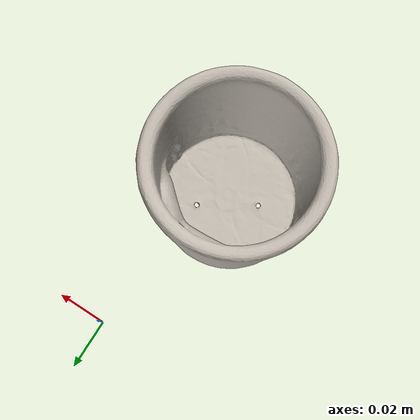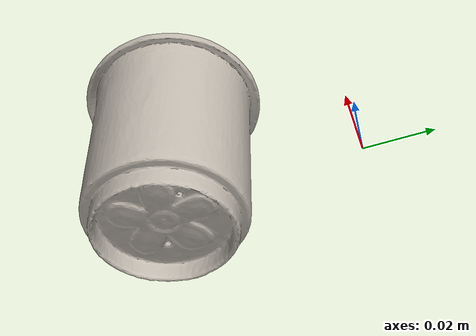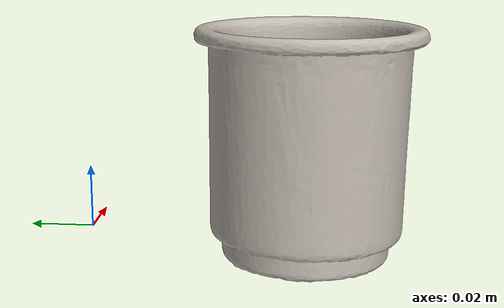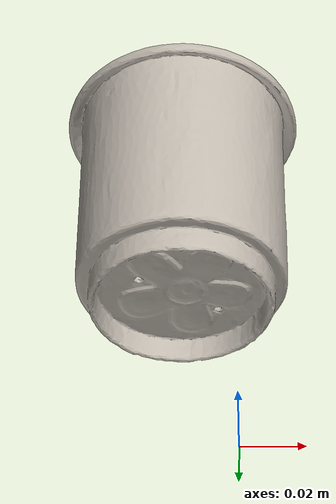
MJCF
<mujoco model="cups_c">
  <compiler angle="radian" meshdir="assets" texturedir="assets"/>
    <default>
        <default class="ycb_col">
            <geom contype="1" class="ycb_col" conaffinity="1" group="3" rgba=".4 .5 .6 1"/>
        </default>
        <default class="ycb_viz">
            <geom contype="0" class="ycb_col" conaffinity="0" type="mesh" mass="0"/>
        </default>
    </default>
  <asset>
    <texture type="2d" name="c_cups_tex" file="texture_map.png"/>
    <material name="c_cups_mat" texture="c_cups_tex" specular="0.5" shininess="0.5"/>
    <mesh file="textured.obj" name="c_cups"/>
    <mesh file="textured_collision_0.obj" name="c_cups_collision_0"/>
    <mesh file="textured_collision_1.obj" name="c_cups_collision_1"/>
    <mesh file="textured_collision_2.obj" name="c_cups_collision_2"/>
    <mesh file="textured_collision_3.obj" name="c_cups_collision_3"/>
    <mesh file="textured_collision_4.obj" name="c_cups_collision_4"/>
    <mesh file="textured_collision_5.obj" name="c_cups_collision_5"/>
    <mesh file="textured_collision_6.obj" name="c_cups_collision_6"/>
    <mesh file="textured_collision_7.obj" name="c_cups_collision_7"/>
    <mesh file="textured_collision_8.obj" name="c_cups_collision_8"/>
    <mesh file="textured_collision_9.obj" name="c_cups_collision_9"/>
    <mesh file="textured_collision_10.obj" name="c_cups_collision_10"/>
    <mesh file="textured_collision_11.obj" name="c_cups_collision_11"/>
    <mesh file="textured_collision_12.obj" name="c_cups_collision_12"/>
    <mesh file="textured_collision_13.obj" name="c_cups_collision_13"/>
    <mesh file="textured_collision_14.obj" name="c_cups_collision_14"/>
    <mesh file="textured_collision_15.obj" name="c_cups_collision_15"/>
    <mesh file="textured_collision_16.obj" name="c_cups_collision_16"/>
    <mesh file="textured_collision_17.obj" name="c_cups_collision_17"/>
    <mesh file="textured_collision_18.obj" name="c_cups_collision_18"/>
    <mesh file="textured_collision_19.obj" name="c_cups_collision_19"/>
    <mesh file="textured_collision_20.obj" name="c_cups_collision_20"/>
    <mesh file="textured_collision_21.obj" name="c_cups_collision_21"/>
    <mesh file="textured_collision_22.obj" name="c_cups_collision_22"/>
    <mesh file="textured_collision_23.obj" name="c_cups_collision_23"/>
    <mesh file="textured_collision_24.obj" name="c_cups_collision_24"/>
    <mesh file="textured_collision_25.obj" name="c_cups_collision_25"/>
    <mesh file="textured_collision_26.obj" name="c_cups_collision_26"/>
    <mesh file="textured_collision_27.obj" name="c_cups_collision_27"/>
    <mesh file="textured_collision_28.obj" name="c_cups_collision_28"/>
    <mesh file="textured_collision_29.obj" name="c_cups_collision_29"/>
    <mesh file="textured_collision_30.obj" name="c_cups_collision_30"/>
    <mesh file="textured_collision_31.obj" name="c_cups_collision_31"/>
    <mesh file="textured_collision_32.obj" name="c_cups_collision_32"/>
    <mesh file="textured_collision_33.obj" name="c_cups_collision_33"/>
    <mesh file="textured_collision_34.obj" name="c_cups_collision_34"/>
    <mesh file="textured_collision_35.obj" name="c_cups_collision_35"/>
    <mesh file="textured_collision_36.obj" name="c_cups_collision_36"/>
    <mesh file="textured_collision_37.obj" name="c_cups_collision_37"/>
    <mesh file="textured_collision_38.obj" name="c_cups_collision_38"/>
    <mesh file="textured_collision_39.obj" name="c_cups_collision_39"/>
    <mesh file="textured_collision_40.obj" name="c_cups_collision_40"/>
    <mesh file="textured_collision_41.obj" name="c_cups_collision_41"/>
    <mesh file="textured_collision_42.obj" name="c_cups_collision_42"/>
    <mesh file="textured_collision_43.obj" name="c_cups_collision_43"/>
    <mesh file="textured_collision_44.obj" name="c_cups_collision_44"/>
    <mesh file="textured_collision_45.obj" name="c_cups_collision_45"/>
    <mesh file="textured_collision_46.obj" name="c_cups_collision_46"/>
    <mesh file="textured_collision_47.obj" name="c_cups_collision_47"/>
    <mesh file="textured_collision_48.obj" name="c_cups_collision_48"/>
    <mesh file="textured_collision_49.obj" name="c_cups_collision_49"/>
  </asset>
  <worldbody>
      <geom material="c_cups_mat" mesh="c_cups" class="ycb_viz"/>
      <geom mesh="c_cups_collision_0" class="ycb_col" conaffinity="1" condim="4" friction="0.1 0.1 0.1" mass="0.0001260469307996628" rgba="1 1 1 1" solimp="0.99 0.99 0.01" solref=".001 0.1" type="mesh" group="3"/>
      <geom mesh="c_cups_collision_1" class="ycb_col" conaffinity="1" condim="4" friction="0.1 0.1 0.1" mass="0.0002491958388845438" rgba="1 1 1 1" solimp="0.99 0.99 0.01" solref=".001 0.1" type="mesh" group="3"/>
      <geom mesh="c_cups_collision_2" class="ycb_col" conaffinity="1" condim="4" friction="0.1 0.1 0.1" mass="0.00023635876276434324" rgba="1 1 1 1" solimp="0.99 0.99 0.01" solref=".001 0.1" type="mesh" group="3"/>
      <geom mesh="c_cups_collision_3" class="ycb_col" conaffinity="1" condim="4" friction="0.1 0.1 0.1" mass="0.0001544390883821313" rgba="1 1 1 1" solimp="0.99 0.99 0.01" solref=".001 0.1" type="mesh" group="3"/>
      <geom mesh="c_cups_collision_4" class="ycb_col" conaffinity="1" condim="4" friction="0.1 0.1 0.1" mass="0.0012026190300651837" rgba="1 1 1 1" solimp="0.99 0.99 0.01" solref=".001 0.1" type="mesh" group="3"/>
      <geom mesh="c_cups_collision_5" class="ycb_col" conaffinity="1" condim="4" friction="0.1 0.1 0.1" mass="0.0002284991314323431" rgba="1 1 1 1" solimp="0.99 0.99 0.01" solref=".001 0.1" type="mesh" group="3"/>
      <geom mesh="c_cups_collision_6" class="ycb_col" conaffinity="1" condim="4" friction="0.1 0.1 0.1" mass="0.0003217879330934249" rgba="1 1 1 1" solimp="0.99 0.99 0.01" solref=".001 0.1" type="mesh" group="3"/>
      <geom mesh="c_cups_collision_7" class="ycb_col" conaffinity="1" condim="4" friction="0.1 0.1 0.1" mass="0.00022000221589404031" rgba="1 1 1 1" solimp="0.99 0.99 0.01" solref=".001 0.1" type="mesh" group="3"/>
      <geom mesh="c_cups_collision_8" class="ycb_col" conaffinity="1" condim="4" friction="0.1 0.1 0.1" mass="0.00035129744074748255" rgba="1 1 1 1" solimp="0.99 0.99 0.01" solref=".001 0.1" type="mesh" group="3"/>
      <geom mesh="c_cups_collision_9" class="ycb_col" conaffinity="1" condim="4" friction="0.1 0.1 0.1" mass="0.00012489885557781841" rgba="1 1 1 1" solimp="0.99 0.99 0.01" solref=".001 0.1" type="mesh" group="3"/>
      <geom mesh="c_cups_collision_10" class="ycb_col" conaffinity="1" condim="4" friction="0.1 0.1 0.1" mass="0.00015944418206134198" rgba="1 1 1 1" solimp="0.99 0.99 0.01" solref=".001 0.1" type="mesh" group="3"/>
      <geom mesh="c_cups_collision_11" class="ycb_col" conaffinity="1" condim="4" friction="0.1 0.1 0.1" mass="5.7817609628002876e-05" rgba="1 1 1 1" solimp="0.99 0.99 0.01" solref=".001 0.1" type="mesh" group="3"/>
      <geom mesh="c_cups_collision_12" class="ycb_col" conaffinity="1" condim="4" friction="0.1 0.1 0.1" mass="0.00017087512350771834" rgba="1 1 1 1" solimp="0.99 0.99 0.01" solref=".001 0.1" type="mesh" group="3"/>
      <geom mesh="c_cups_collision_13" class="ycb_col" conaffinity="1" condim="4" friction="0.1 0.1 0.1" mass="7.089035835977316e-05" rgba="1 1 1 1" solimp="0.99 0.99 0.01" solref=".001 0.1" type="mesh" group="3"/>
      <geom mesh="c_cups_collision_14" class="ycb_col" conaffinity="1" condim="4" friction="0.1 0.1 0.1" mass="0.000172632359718095" rgba="1 1 1 1" solimp="0.99 0.99 0.01" solref=".001 0.1" type="mesh" group="3"/>
      <geom mesh="c_cups_collision_15" class="ycb_col" conaffinity="1" condim="4" friction="0.1 0.1 0.1" mass="0.00010959336501142218" rgba="1 1 1 1" solimp="0.99 0.99 0.01" solref=".001 0.1" type="mesh" group="3"/>
      <geom mesh="c_cups_collision_16" class="ycb_col" conaffinity="1" condim="4" friction="0.1 0.1 0.1" mass="0.0001619031078568592" rgba="1 1 1 1" solimp="0.99 0.99 0.01" solref=".001 0.1" type="mesh" group="3"/>
      <geom mesh="c_cups_collision_17" class="ycb_col" conaffinity="1" condim="4" friction="0.1 0.1 0.1" mass="9.642937170404635e-05" rgba="1 1 1 1" solimp="0.99 0.99 0.01" solref=".001 0.1" type="mesh" group="3"/>
      <geom mesh="c_cups_collision_18" class="ycb_col" conaffinity="1" condim="4" friction="0.1 0.1 0.1" mass="9.647738350191893e-05" rgba="1 1 1 1" solimp="0.99 0.99 0.01" solref=".001 0.1" type="mesh" group="3"/>
      <geom mesh="c_cups_collision_19" class="ycb_col" conaffinity="1" condim="4" friction="0.1 0.1 0.1" mass="8.51916177569036e-05" rgba="1 1 1 1" solimp="0.99 0.99 0.01" solref=".001 0.1" type="mesh" group="3"/>
      <geom mesh="c_cups_collision_20" class="ycb_col" conaffinity="1" condim="4" friction="0.1 0.1 0.1" mass="0.0002730863203082876" rgba="1 1 1 1" solimp="0.99 0.99 0.01" solref=".001 0.1" type="mesh" group="3"/>
      <geom mesh="c_cups_collision_21" class="ycb_col" conaffinity="1" condim="4" friction="0.1 0.1 0.1" mass="7.117122402363244e-05" rgba="1 1 1 1" solimp="0.99 0.99 0.01" solref=".001 0.1" type="mesh" group="3"/>
      <geom mesh="c_cups_collision_22" class="ycb_col" conaffinity="1" condim="4" friction="0.1 0.1 0.1" mass="9.103100362325315e-05" rgba="1 1 1 1" solimp="0.99 0.99 0.01" solref=".001 0.1" type="mesh" group="3"/>
      <geom mesh="c_cups_collision_23" class="ycb_col" conaffinity="1" condim="4" friction="0.1 0.1 0.1" mass="0.00020850839578541406" rgba="1 1 1 1" solimp="0.99 0.99 0.01" solref=".001 0.1" type="mesh" group="3"/>
      <geom mesh="c_cups_collision_24" class="ycb_col" conaffinity="1" condim="4" friction="0.1 0.1 0.1" mass="0.0002325133932180428" rgba="1 1 1 1" solimp="0.99 0.99 0.01" solref=".001 0.1" type="mesh" group="3"/>
      <geom mesh="c_cups_collision_25" class="ycb_col" conaffinity="1" condim="4" friction="0.1 0.1 0.1" mass="6.758776360246826e-05" rgba="1 1 1 1" solimp="0.99 0.99 0.01" solref=".001 0.1" type="mesh" group="3"/>
      <geom mesh="c_cups_collision_26" class="ycb_col" conaffinity="1" condim="4" friction="0.1 0.1 0.1" mass="5.4661592477835805e-05" rgba="1 1 1 1" solimp="0.99 0.99 0.01" solref=".001 0.1" type="mesh" group="3"/>
      <geom mesh="c_cups_collision_27" class="ycb_col" conaffinity="1" condim="4" friction="0.1 0.1 0.1" mass="7.689796174803462e-05" rgba="1 1 1 1" solimp="0.99 0.99 0.01" solref=".001 0.1" type="mesh" group="3"/>
      <geom mesh="c_cups_collision_28" class="ycb_col" conaffinity="1" condim="4" friction="0.1 0.1 0.1" mass="0.000324715865292138" rgba="1 1 1 1" solimp="0.99 0.99 0.01" solref=".001 0.1" type="mesh" group="3"/>
      <geom mesh="c_cups_collision_29" class="ycb_col" conaffinity="1" condim="4" friction="0.1 0.1 0.1" mass="0.00011971310630044262" rgba="1 1 1 1" solimp="0.99 0.99 0.01" solref=".001 0.1" type="mesh" group="3"/>
      <geom mesh="c_cups_collision_30" class="ycb_col" conaffinity="1" condim="4" friction="0.1 0.1 0.1" mass="0.0008047781972993556" rgba="1 1 1 1" solimp="0.99 0.99 0.01" solref=".001 0.1" type="mesh" group="3"/>
      <geom mesh="c_cups_collision_31" class="ycb_col" conaffinity="1" condim="4" friction="0.1 0.1 0.1" mass="0.0006446353638585365" rgba="1 1 1 1" solimp="0.99 0.99 0.01" solref=".001 0.1" type="mesh" group="3"/>
      <geom mesh="c_cups_collision_32" class="ycb_col" conaffinity="1" condim="4" friction="0.1 0.1 0.1" mass="0.0006763114774455584" rgba="1 1 1 1" solimp="0.99 0.99 0.01" solref=".001 0.1" type="mesh" group="3"/>
      <geom mesh="c_cups_collision_33" class="ycb_col" conaffinity="1" condim="4" friction="0.1 0.1 0.1" mass="0.0007117032311459748" rgba="1 1 1 1" solimp="0.99 0.99 0.01" solref=".001 0.1" type="mesh" group="3"/>
      <geom mesh="c_cups_collision_34" class="ycb_col" conaffinity="1" condim="4" friction="0.1 0.1 0.1" mass="0.0007447199450880083" rgba="1 1 1 1" solimp="0.99 0.99 0.01" solref=".001 0.1" type="mesh" group="3"/>
      <geom mesh="c_cups_collision_35" class="ycb_col" conaffinity="1" condim="4" friction="0.1 0.1 0.1" mass="0.0009063387772350896" rgba="1 1 1 1" solimp="0.99 0.99 0.01" solref=".001 0.1" type="mesh" group="3"/>
      <geom mesh="c_cups_collision_36" class="ycb_col" conaffinity="1" condim="4" friction="0.1 0.1 0.1" mass="0.0006897917680888532" rgba="1 1 1 1" solimp="0.99 0.99 0.01" solref=".001 0.1" type="mesh" group="3"/>
      <geom mesh="c_cups_collision_37" class="ycb_col" conaffinity="1" condim="4" friction="0.1 0.1 0.1" mass="0.0008257635476839575" rgba="1 1 1 1" solimp="0.99 0.99 0.01" solref=".001 0.1" type="mesh" group="3"/>
      <geom mesh="c_cups_collision_38" class="ycb_col" conaffinity="1" condim="4" friction="0.1 0.1 0.1" mass="3.469487679026465e-05" rgba="1 1 1 1" solimp="0.99 0.99 0.01" solref=".001 0.1" type="mesh" group="3"/>
      <geom mesh="c_cups_collision_39" class="ycb_col" conaffinity="1" condim="4" friction="0.1 0.1 0.1" mass="3.4466737996421656e-05" rgba="1 1 1 1" solimp="0.99 0.99 0.01" solref=".001 0.1" type="mesh" group="3"/>
      <geom mesh="c_cups_collision_40" class="ycb_col" conaffinity="1" condim="4" friction="0.1 0.1 0.1" mass="0.0007442093565434697" rgba="1 1 1 1" solimp="0.99 0.99 0.01" solref=".001 0.1" type="mesh" group="3"/>
      <geom mesh="c_cups_collision_41" class="ycb_col" conaffinity="1" condim="4" friction="0.1 0.1 0.1" mass="0.0011292137130376613" rgba="1 1 1 1" solimp="0.99 0.99 0.01" solref=".001 0.1" type="mesh" group="3"/>
      <geom mesh="c_cups_collision_42" class="ycb_col" conaffinity="1" condim="4" friction="0.1 0.1 0.1" mass="0.0009656799043089597" rgba="1 1 1 1" solimp="0.99 0.99 0.01" solref=".001 0.1" type="mesh" group="3"/>
      <geom mesh="c_cups_collision_43" class="ycb_col" conaffinity="1" condim="4" friction="0.1 0.1 0.1" mass="0.00027599770580131875" rgba="1 1 1 1" solimp="0.99 0.99 0.01" solref=".001 0.1" type="mesh" group="3"/>
      <geom mesh="c_cups_collision_44" class="ycb_col" conaffinity="1" condim="4" friction="0.1 0.1 0.1" mass="0.00010608039951466842" rgba="1 1 1 1" solimp="0.99 0.99 0.01" solref=".001 0.1" type="mesh" group="3"/>
      <geom mesh="c_cups_collision_45" class="ycb_col" conaffinity="1" condim="4" friction="0.1 0.1 0.1" mass="0.0004508812679734442" rgba="1 1 1 1" solimp="0.99 0.99 0.01" solref=".001 0.1" type="mesh" group="3"/>
      <geom mesh="c_cups_collision_46" class="ycb_col" conaffinity="1" condim="4" friction="0.1 0.1 0.1" mass="0.0002495898120567364" rgba="1 1 1 1" solimp="0.99 0.99 0.01" solref=".001 0.1" type="mesh" group="3"/>
      <geom mesh="c_cups_collision_47" class="ycb_col" conaffinity="1" condim="4" friction="0.1 0.1 0.1" mass="0.00032554363535205544" rgba="1 1 1 1" solimp="0.99 0.99 0.01" solref=".001 0.1" type="mesh" group="3"/>
      <geom mesh="c_cups_collision_48" class="ycb_col" conaffinity="1" condim="4" friction="0.1 0.1 0.1" mass="0.00019629087084852868" rgba="1 1 1 1" solimp="0.99 0.99 0.01" solref=".001 0.1" type="mesh" group="3"/>
      <geom mesh="c_cups_collision_49" class="ycb_col" conaffinity="1" condim="4" friction="0.1 0.1 0.1" mass="0.0005670230788045324" rgba="1 1 1 1" solimp="0.99 0.99 0.01" solref=".001 0.1" type="mesh" group="3"/>
  </worldbody>
</mujoco>
